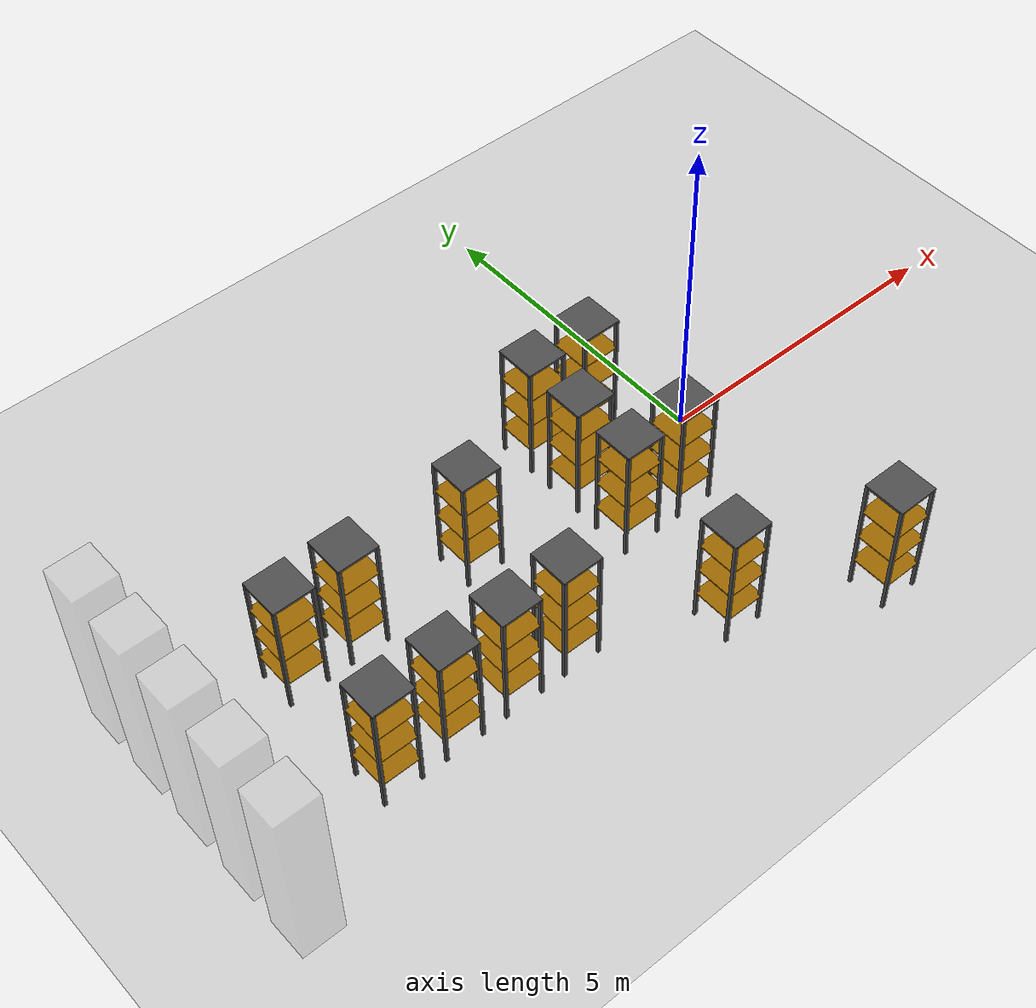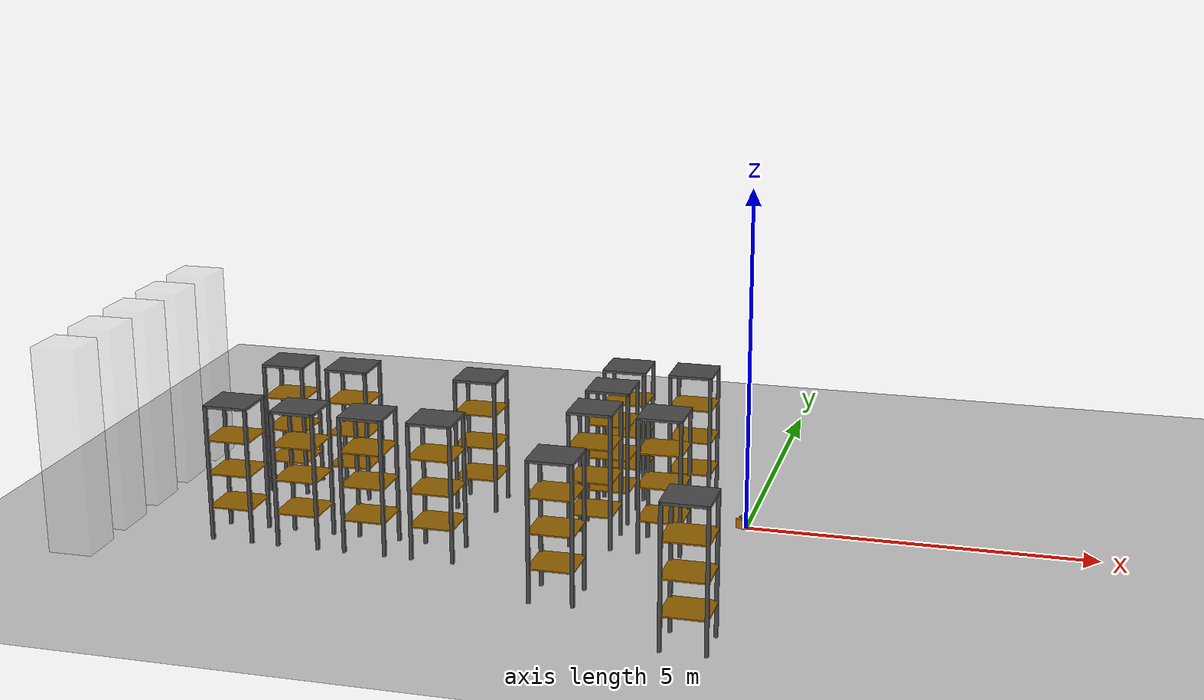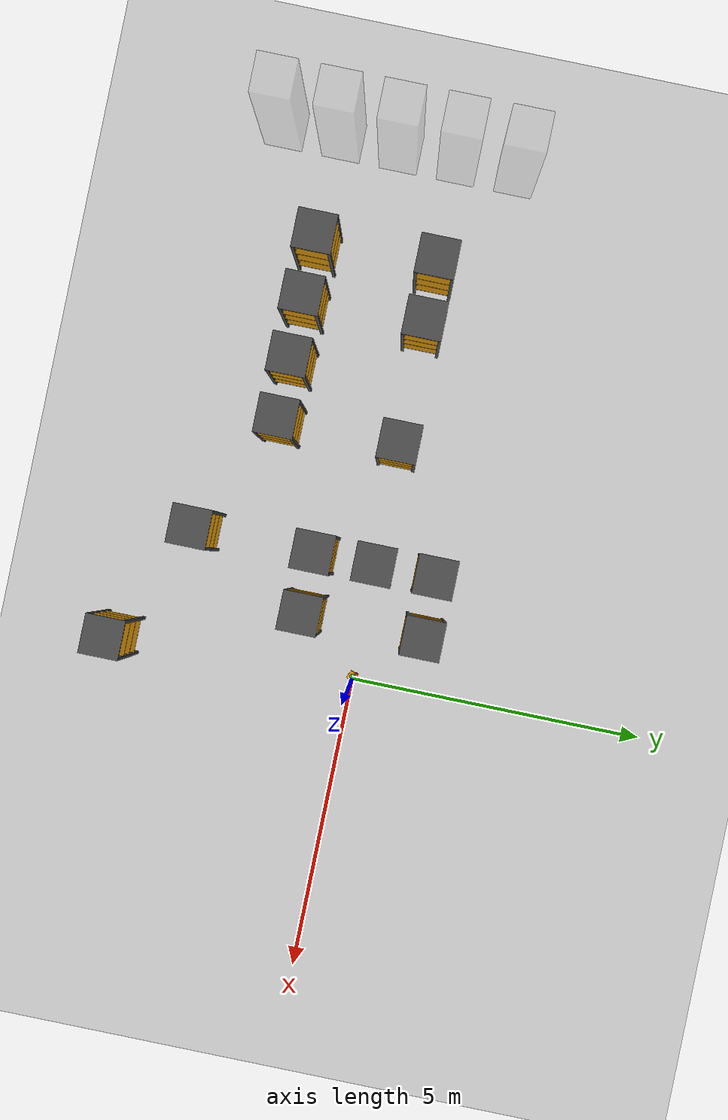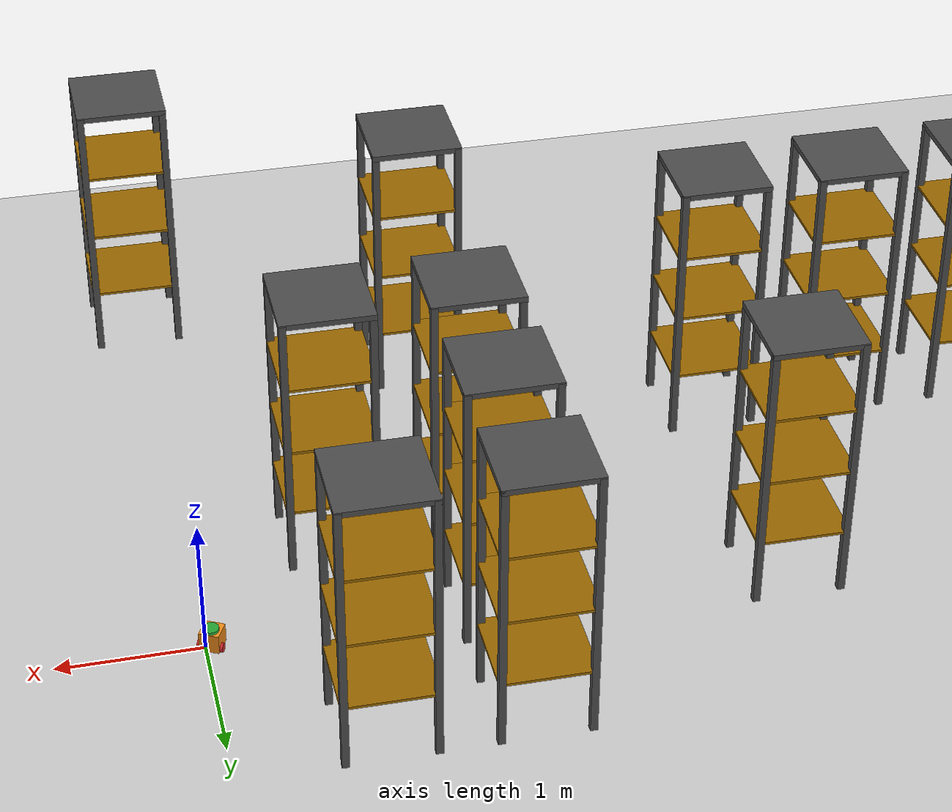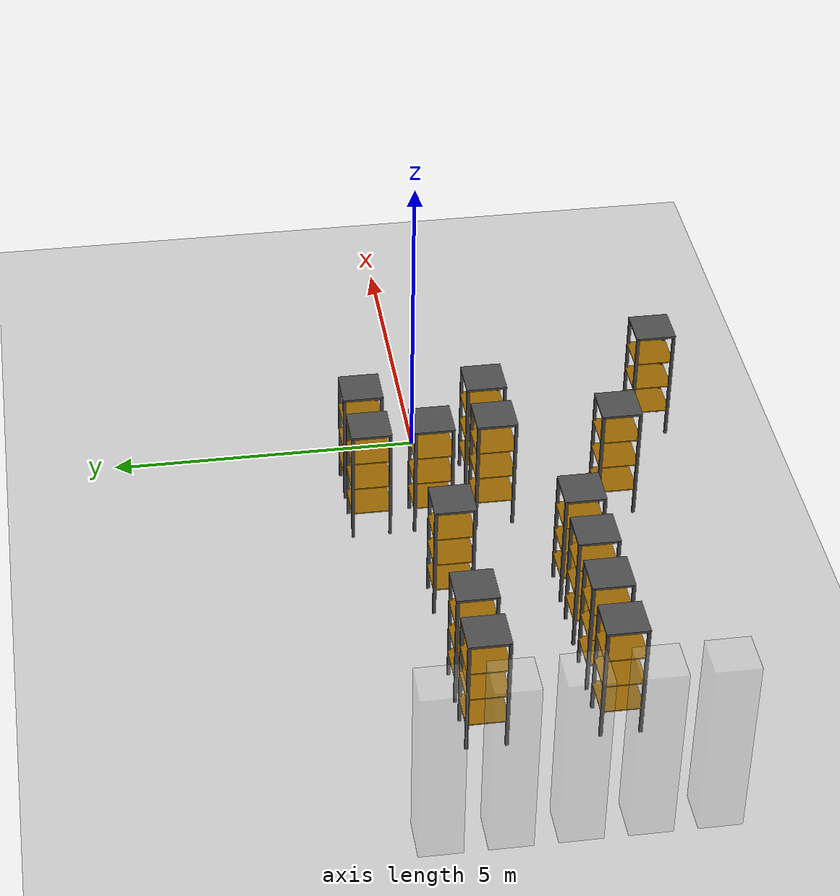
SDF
<sdf version="1.6">
 <world name="default">
  <model name="ground_plane">
   <static>1</static>
   <link name="link">
    <collision name="collision">
     <geometry><plane><normal>0 0 1</normal><size>50 50</size></plane></geometry>
     <surface><friction><ode><mu>100</mu><mu2>50</mu2></ode></friction></surface>
    </collision>
    <visual name="visual">
     <cast_shadows>0</cast_shadows>
     <geometry><plane><normal>0 0 1</normal><size>100 100</size></plane></geometry>
     <material>
      <script><uri>file://media/materials/scripts/gazebo.material</uri><name>Gazebo/Grey</name></script>
     </material>
    </visual>
    <velocity_decay><linear>0</linear><angular>0</angular></velocity_decay>
   </link>
  </model>
  <model name="warehouse_shelf_5_9">
   <static>1</static>
   <link name="main_block">
    <pose>0 0 1.25 0 -0 0</pose>
    <collision name="collision"><geometry><box><size>0.65 0.65 1.5</size></box></geometry></collision>
   </link>
   <link name="leg_1">
    <pose>0.3 0.3 1 0 -0 0</pose>
    <collision name="collision"><geometry><box><size>0.05 0.05 2</size></box></geometry></collision>
    <visual name="visual">
     <geometry><box><size>0.05 0.05 2</size></box></geometry>
     <material><ambient>0.2 0.2 0.2 1</ambient><diffuse>0.3 0.3 0.3 1</diffuse></material>
    </visual>
   </link>
   <link name="leg_2">
    <pose>-0.3 0.3 1 0 -0 0</pose>
    <collision name="collision"><geometry><box><size>0.05 0.05 2</size></box></geometry></collision>
    <visual name="visual">
     <geometry><box><size>0.05 0.05 2</size></box></geometry>
     <material><ambient>0.2 0.2 0.2 1</ambient><diffuse>0.3 0.3 0.3 1</diffuse></material>
    </visual>
   </link>
   <link name="leg_3">
    <pose>-0.3 -0.3 1 0 -0 0</pose>
    <collision name="collision"><geometry><box><size>0.05 0.05 2</size></box></geometry></collision>
    <visual name="visual">
     <geometry><box><size>0.05 0.05 2</size></box></geometry>
     <material><ambient>0.2 0.2 0.2 1</ambient><diffuse>0.3 0.3 0.3 1</diffuse></material>
    </visual>
   </link>
   <link name="leg_4">
    <pose>0.3 -0.3 1 0 -0 0</pose>
    <collision name="collision"><geometry><box><size>0.05 0.05 2</size></box></geometry></collision>
    <visual name="visual">
     <geometry><box><size>0.05 0.05 2</size></box></geometry>
     <material><ambient>0.2 0.2 0.2 1</ambient><diffuse>0.3 0.3 0.3 1</diffuse></material>
    </visual>
   </link>
   <link name="shelf_0">
    <pose>0 0 0.49 0 -0 0</pose>
    <visual name="visual">
     <geometry><box><size>0.649 0.649 0.02</size></box></geometry>
     <material><ambient>0.2 0.05 0 1</ambient><diffuse>0.6 0.4 0 1</diffuse></material>
    </visual>
   </link>
   <link name="shelf_1">
    <pose>0 0 0.99 0 -0 0</pose>
    <visual name="visual">
     <geometry><box><size>0.649 0.649 0.02</size></box></geometry>
     <material><ambient>0.2 0.05 0 1</ambient><diffuse>0.6 0.4 0 1</diffuse></material>
    </visual>
   </link>
   <link name="shelf_2">
    <pose>0 0 1.49 0 -0 0</pose>
    <visual name="visual">
     <geometry><box><size>0.649 0.649 0.02</size></box></geometry>
     <material><ambient>0.2 0.05 0 1</ambient><diffuse>0.6 0.4 0 1</diffuse></material>
    </visual>
   </link>
   <link name="shelf_top">
    <pose>0 0 1.99 0 -0 0</pose>
    <visual name="visual">
     <geometry><box><size>0.65 0.65 0.04</size></box></geometry>
     <material><ambient>0.2 0.2 0.2 1</ambient><diffuse>0.3 0.3 0.3 1</diffuse></material>
    </visual>
   </link>
   <pose>0 -4 0 0 -0 0</pose>
  </model>
  <model name="pole_6_0">
   <static>1</static>
   <link name="main_block">
    <pose>0 0 1.5 0 -0 0</pose>
    <collision name="collision"><geometry><box><size>0.65 0.65 3</size></box></geometry></collision>
    <visual name="visual">
     <geometry><box><size>0.65 0.65 3</size></box></geometry>
     <material><ambient>0.5 0.5 0.5 0.25</ambient><diffuse>0.75 0.75 0.75 0.25</diffuse></material>
    </visual>
   </link>
   <pose>-9 -3 0 0 -0 0</pose>
  </model>
  <model name="warehouse_shelf_6_7">
   <static>1</static>
   <link name="main_block">
    <pose>0 0 1.25 0 -0 0</pose>
    <collision name="collision"><geometry><box><size>0.65 0.65 1.5</size></box></geometry></collision>
   </link>
   <link name="leg_1">
    <pose>0.3 0.3 1 0 -0 0</pose>
    <collision name="collision"><geometry><box><size>0.05 0.05 2</size></box></geometry></collision>
    <visual name="visual">
     <geometry><box><size>0.05 0.05 2</size></box></geometry>
     <material><ambient>0.2 0.2 0.2 1</ambient><diffuse>0.3 0.3 0.3 1</diffuse></material>
    </visual>
   </link>
   <link name="leg_2">
    <pose>-0.3 0.3 1 0 -0 0</pose>
    <collision name="collision"><geometry><box><size>0.05 0.05 2</size></box></geometry></collision>
    <visual name="visual">
     <geometry><box><size>0.05 0.05 2</size></box></geometry>
     <material><ambient>0.2 0.2 0.2 1</ambient><diffuse>0.3 0.3 0.3 1</diffuse></material>
    </visual>
   </link>
   <link name="leg_3">
    <pose>-0.3 -0.3 1 0 -0 0</pose>
    <collision name="collision"><geometry><box><size>0.05 0.05 2</size></box></geometry></collision>
    <visual name="visual">
     <geometry><box><size>0.05 0.05 2</size></box></geometry>
     <material><ambient>0.2 0.2 0.2 1</ambient><diffuse>0.3 0.3 0.3 1</diffuse></material>
    </visual>
   </link>
   <link name="leg_4">
    <pose>0.3 -0.3 1 0 -0 0</pose>
    <collision name="collision"><geometry><box><size>0.05 0.05 2</size></box></geometry></collision>
    <visual name="visual">
     <geometry><box><size>0.05 0.05 2</size></box></geometry>
     <material><ambient>0.2 0.2 0.2 1</ambient><diffuse>0.3 0.3 0.3 1</diffuse></material>
    </visual>
   </link>
   <link name="shelf_0">
    <pose>0 0 0.49 0 -0 0</pose>
    <visual name="visual">
     <geometry><box><size>0.649 0.649 0.02</size></box></geometry>
     <material><ambient>0.2 0.05 0 1</ambient><diffuse>0.6 0.4 0 1</diffuse></material>
    </visual>
   </link>
   <link name="shelf_1">
    <pose>0 0 0.99 0 -0 0</pose>
    <visual name="visual">
     <geometry><box><size>0.649 0.649 0.02</size></box></geometry>
     <material><ambient>0.2 0.05 0 1</ambient><diffuse>0.6 0.4 0 1</diffuse></material>
    </visual>
   </link>
   <link name="shelf_2">
    <pose>0 0 1.49 0 -0 0</pose>
    <visual name="visual">
     <geometry><box><size>0.649 0.649 0.02</size></box></geometry>
     <material><ambient>0.2 0.05 0 1</ambient><diffuse>0.6 0.4 0 1</diffuse></material>
    </visual>
   </link>
   <link name="shelf_top">
    <pose>0 0 1.99 0 -0 0</pose>
    <visual name="visual">
     <geometry><box><size>0.65 0.65 0.04</size></box></geometry>
     <material><ambient>0.2 0.2 0.2 1</ambient><diffuse>0.3 0.3 0.3 1</diffuse></material>
    </visual>
   </link>
   <pose>-2 -3 0 0 -0 0</pose>
  </model>
  <model name="pole_7_0">
   <static>1</static>
   <link name="main_block">
    <pose>0 0 1.5 0 -0 0</pose>
    <collision name="collision"><geometry><box><size>0.65 0.65 3</size></box></geometry></collision>
    <visual name="visual">
     <geometry><box><size>0.65 0.65 3</size></box></geometry>
     <material><ambient>0.5 0.5 0.5 0.25</ambient><diffuse>0.75 0.75 0.75 0.25</diffuse></material>
    </visual>
   </link>
   <pose>-9 -2 0 0 -0 0</pose>
  </model>
  <model name="warehouse_shelf_7_2">
   <static>1</static>
   <link name="main_block">
    <pose>0 0 1.25 0 -0 0</pose>
    <collision name="collision"><geometry><box><size>0.65 0.65 1.5</size></box></geometry></collision>
   </link>
   <link name="leg_1">
    <pose>0.3 0.3 1 0 -0 0</pose>
    <collision name="collision"><geometry><box><size>0.05 0.05 2</size></box></geometry></collision>
    <visual name="visual">
     <geometry><box><size>0.05 0.05 2</size></box></geometry>
     <material><ambient>0.2 0.2 0.2 1</ambient><diffuse>0.3 0.3 0.3 1</diffuse></material>
    </visual>
   </link>
   <link name="leg_2">
    <pose>-0.3 0.3 1 0 -0 0</pose>
    <collision name="collision"><geometry><box><size>0.05 0.05 2</size></box></geometry></collision>
    <visual name="visual">
     <geometry><box><size>0.05 0.05 2</size></box></geometry>
     <material><ambient>0.2 0.2 0.2 1</ambient><diffuse>0.3 0.3 0.3 1</diffuse></material>
    </visual>
   </link>
   <link name="leg_3">
    <pose>-0.3 -0.3 1 0 -0 0</pose>
    <collision name="collision"><geometry><box><size>0.05 0.05 2</size></box></geometry></collision>
    <visual name="visual">
     <geometry><box><size>0.05 0.05 2</size></box></geometry>
     <material><ambient>0.2 0.2 0.2 1</ambient><diffuse>0.3 0.3 0.3 1</diffuse></material>
    </visual>
   </link>
   <link name="leg_4">
    <pose>0.3 -0.3 1 0 -0 0</pose>
    <collision name="collision"><geometry><box><size>0.05 0.05 2</size></box></geometry></collision>
    <visual name="visual">
     <geometry><box><size>0.05 0.05 2</size></box></geometry>
     <material><ambient>0.2 0.2 0.2 1</ambient><diffuse>0.3 0.3 0.3 1</diffuse></material>
    </visual>
   </link>
   <link name="shelf_0">
    <pose>0 0 0.49 0 -0 0</pose>
    <visual name="visual">
     <geometry><box><size>0.649 0.649 0.02</size></box></geometry>
     <material><ambient>0.2 0.05 0 1</ambient><diffuse>0.6 0.4 0 1</diffuse></material>
    </visual>
   </link>
   <link name="shelf_1">
    <pose>0 0 0.99 0 -0 0</pose>
    <visual name="visual">
     <geometry><box><size>0.649 0.649 0.02</size></box></geometry>
     <material><ambient>0.2 0.05 0 1</ambient><diffuse>0.6 0.4 0 1</diffuse></material>
    </visual>
   </link>
   <link name="shelf_2">
    <pose>0 0 1.49 0 -0 0</pose>
    <visual name="visual">
     <geometry><box><size>0.649 0.649 0.02</size></box></geometry>
     <material><ambient>0.2 0.05 0 1</ambient><diffuse>0.6 0.4 0 1</diffuse></material>
    </visual>
   </link>
   <link name="shelf_top">
    <pose>0 0 1.99 0 -0 0</pose>
    <visual name="visual">
     <geometry><box><size>0.65 0.65 0.04</size></box></geometry>
     <material><ambient>0.2 0.2 0.2 1</ambient><diffuse>0.3 0.3 0.3 1</diffuse></material>
    </visual>
   </link>
   <pose>-7 -2 0 0 -0 0</pose>
  </model>
  <model name="warehouse_shelf_7_3">
   <static>1</static>
   <link name="main_block">
    <pose>0 0 1.25 0 -0 0</pose>
    <collision name="collision"><geometry><box><size>0.65 0.65 1.5</size></box></geometry></collision>
   </link>
   <link name="leg_1">
    <pose>0.3 0.3 1 0 -0 0</pose>
    <collision name="collision"><geometry><box><size>0.05 0.05 2</size></box></geometry></collision>
    <visual name="visual">
     <geometry><box><size>0.05 0.05 2</size></box></geometry>
     <material><ambient>0.2 0.2 0.2 1</ambient><diffuse>0.3 0.3 0.3 1</diffuse></material>
    </visual>
   </link>
   <link name="leg_2">
    <pose>-0.3 0.3 1 0 -0 0</pose>
    <collision name="collision"><geometry><box><size>0.05 0.05 2</size></box></geometry></collision>
    <visual name="visual">
     <geometry><box><size>0.05 0.05 2</size></box></geometry>
     <material><ambient>0.2 0.2 0.2 1</ambient><diffuse>0.3 0.3 0.3 1</diffuse></material>
    </visual>
   </link>
   <link name="leg_3">
    <pose>-0.3 -0.3 1 0 -0 0</pose>
    <collision name="collision"><geometry><box><size>0.05 0.05 2</size></box></geometry></collision>
    <visual name="visual">
     <geometry><box><size>0.05 0.05 2</size></box></geometry>
     <material><ambient>0.2 0.2 0.2 1</ambient><diffuse>0.3 0.3 0.3 1</diffuse></material>
    </visual>
   </link>
   <link name="leg_4">
    <pose>0.3 -0.3 1 0 -0 0</pose>
    <collision name="collision"><geometry><box><size>0.05 0.05 2</size></box></geometry></collision>
    <visual name="visual">
     <geometry><box><size>0.05 0.05 2</size></box></geometry>
     <material><ambient>0.2 0.2 0.2 1</ambient><diffuse>0.3 0.3 0.3 1</diffuse></material>
    </visual>
   </link>
   <link name="shelf_0">
    <pose>0 0 0.49 0 -0 0</pose>
    <visual name="visual">
     <geometry><box><size>0.649 0.649 0.02</size></box></geometry>
     <material><ambient>0.2 0.05 0 1</ambient><diffuse>0.6 0.4 0 1</diffuse></material>
    </visual>
   </link>
   <link name="shelf_1">
    <pose>0 0 0.99 0 -0 0</pose>
    <visual name="visual">
     <geometry><box><size>0.649 0.649 0.02</size></box></geometry>
     <material><ambient>0.2 0.05 0 1</ambient><diffuse>0.6 0.4 0 1</diffuse></material>
    </visual>
   </link>
   <link name="shelf_2">
    <pose>0 0 1.49 0 -0 0</pose>
    <visual name="visual">
     <geometry><box><size>0.649 0.649 0.02</size></box></geometry>
     <material><ambient>0.2 0.05 0 1</ambient><diffuse>0.6 0.4 0 1</diffuse></material>
    </visual>
   </link>
   <link name="shelf_top">
    <pose>0 0 1.99 0 -0 0</pose>
    <visual name="visual">
     <geometry><box><size>0.65 0.65 0.04</size></box></geometry>
     <material><ambient>0.2 0.2 0.2 1</ambient><diffuse>0.3 0.3 0.3 1</diffuse></material>
    </visual>
   </link>
   <pose>-6 -2 0 0 -0 0</pose>
  </model>
  <model name="warehouse_shelf_7_4">
   <static>1</static>
   <link name="main_block">
    <pose>0 0 1.25 0 -0 0</pose>
    <collision name="collision"><geometry><box><size>0.65 0.65 1.5</size></box></geometry></collision>
   </link>
   <link name="leg_1">
    <pose>0.3 0.3 1 0 -0 0</pose>
    <collision name="collision"><geometry><box><size>0.05 0.05 2</size></box></geometry></collision>
    <visual name="visual">
     <geometry><box><size>0.05 0.05 2</size></box></geometry>
     <material><ambient>0.2 0.2 0.2 1</ambient><diffuse>0.3 0.3 0.3 1</diffuse></material>
    </visual>
   </link>
   <link name="leg_2">
    <pose>-0.3 0.3 1 0 -0 0</pose>
    <collision name="collision"><geometry><box><size>0.05 0.05 2</size></box></geometry></collision>
    <visual name="visual">
     <geometry><box><size>0.05 0.05 2</size></box></geometry>
     <material><ambient>0.2 0.2 0.2 1</ambient><diffuse>0.3 0.3 0.3 1</diffuse></material>
    </visual>
   </link>
   <link name="leg_3">
    <pose>-0.3 -0.3 1 0 -0 0</pose>
    <collision name="collision"><geometry><box><size>0.05 0.05 2</size></box></geometry></collision>
    <visual name="visual">
     <geometry><box><size>0.05 0.05 2</size></box></geometry>
     <material><ambient>0.2 0.2 0.2 1</ambient><diffuse>0.3 0.3 0.3 1</diffuse></material>
    </visual>
   </link>
   <link name="leg_4">
    <pose>0.3 -0.3 1 0 -0 0</pose>
    <collision name="collision"><geometry><box><size>0.05 0.05 2</size></box></geometry></collision>
    <visual name="visual">
     <geometry><box><size>0.05 0.05 2</size></box></geometry>
     <material><ambient>0.2 0.2 0.2 1</ambient><diffuse>0.3 0.3 0.3 1</diffuse></material>
    </visual>
   </link>
   <link name="shelf_0">
    <pose>0 0 0.49 0 -0 0</pose>
    <visual name="visual">
     <geometry><box><size>0.649 0.649 0.02</size></box></geometry>
     <material><ambient>0.2 0.05 0 1</ambient><diffuse>0.6 0.4 0 1</diffuse></material>
    </visual>
   </link>
   <link name="shelf_1">
    <pose>0 0 0.99 0 -0 0</pose>
    <visual name="visual">
     <geometry><box><size>0.649 0.649 0.02</size></box></geometry>
     <material><ambient>0.2 0.05 0 1</ambient><diffuse>0.6 0.4 0 1</diffuse></material>
    </visual>
   </link>
   <link name="shelf_2">
    <pose>0 0 1.49 0 -0 0</pose>
    <visual name="visual">
     <geometry><box><size>0.649 0.649 0.02</size></box></geometry>
     <material><ambient>0.2 0.05 0 1</ambient><diffuse>0.6 0.4 0 1</diffuse></material>
    </visual>
   </link>
   <link name="shelf_top">
    <pose>0 0 1.99 0 -0 0</pose>
    <visual name="visual">
     <geometry><box><size>0.65 0.65 0.04</size></box></geometry>
     <material><ambient>0.2 0.2 0.2 1</ambient><diffuse>0.3 0.3 0.3 1</diffuse></material>
    </visual>
   </link>
   <pose>-5 -2 0 0 -0 0</pose>
  </model>
  <model name="warehouse_shelf_7_5">
   <static>1</static>
   <link name="main_block">
    <pose>0 0 1.25 0 -0 0</pose>
    <collision name="collision"><geometry><box><size>0.65 0.65 1.5</size></box></geometry></collision>
   </link>
   <link name="leg_1">
    <pose>0.3 0.3 1 0 -0 0</pose>
    <collision name="collision"><geometry><box><size>0.05 0.05 2</size></box></geometry></collision>
    <visual name="visual">
     <geometry><box><size>0.05 0.05 2</size></box></geometry>
     <material><ambient>0.2 0.2 0.2 1</ambient><diffuse>0.3 0.3 0.3 1</diffuse></material>
    </visual>
   </link>
   <link name="leg_2">
    <pose>-0.3 0.3 1 0 -0 0</pose>
    <collision name="collision"><geometry><box><size>0.05 0.05 2</size></box></geometry></collision>
    <visual name="visual">
     <geometry><box><size>0.05 0.05 2</size></box></geometry>
     <material><ambient>0.2 0.2 0.2 1</ambient><diffuse>0.3 0.3 0.3 1</diffuse></material>
    </visual>
   </link>
   <link name="leg_3">
    <pose>-0.3 -0.3 1 0 -0 0</pose>
    <collision name="collision"><geometry><box><size>0.05 0.05 2</size></box></geometry></collision>
    <visual name="visual">
     <geometry><box><size>0.05 0.05 2</size></box></geometry>
     <material><ambient>0.2 0.2 0.2 1</ambient><diffuse>0.3 0.3 0.3 1</diffuse></material>
    </visual>
   </link>
   <link name="leg_4">
    <pose>0.3 -0.3 1 0 -0 0</pose>
    <collision name="collision"><geometry><box><size>0.05 0.05 2</size></box></geometry></collision>
    <visual name="visual">
     <geometry><box><size>0.05 0.05 2</size></box></geometry>
     <material><ambient>0.2 0.2 0.2 1</ambient><diffuse>0.3 0.3 0.3 1</diffuse></material>
    </visual>
   </link>
   <link name="shelf_0">
    <pose>0 0 0.49 0 -0 0</pose>
    <visual name="visual">
     <geometry><box><size>0.649 0.649 0.02</size></box></geometry>
     <material><ambient>0.2 0.05 0 1</ambient><diffuse>0.6 0.4 0 1</diffuse></material>
    </visual>
   </link>
   <link name="shelf_1">
    <pose>0 0 0.99 0 -0 0</pose>
    <visual name="visual">
     <geometry><box><size>0.649 0.649 0.02</size></box></geometry>
     <material><ambient>0.2 0.05 0 1</ambient><diffuse>0.6 0.4 0 1</diffuse></material>
    </visual>
   </link>
   <link name="shelf_2">
    <pose>0 0 1.49 0 -0 0</pose>
    <visual name="visual">
     <geometry><box><size>0.649 0.649 0.02</size></box></geometry>
     <material><ambient>0.2 0.05 0 1</ambient><diffuse>0.6 0.4 0 1</diffuse></material>
    </visual>
   </link>
   <link name="shelf_top">
    <pose>0 0 1.99 0 -0 0</pose>
    <visual name="visual">
     <geometry><box><size>0.65 0.65 0.04</size></box></geometry>
     <material><ambient>0.2 0.2 0.2 1</ambient><diffuse>0.3 0.3 0.3 1</diffuse></material>
    </visual>
   </link>
   <pose>-4 -2 0 0 -0 0</pose>
  </model>
  <model name="pole_8_0">
   <static>1</static>
   <link name="main_block">
    <pose>0 0 1.5 0 -0 0</pose>
    <collision name="collision"><geometry><box><size>0.65 0.65 3</size></box></geometry></collision>
    <visual name="visual">
     <geometry><box><size>0.65 0.65 3</size></box></geometry>
     <material><ambient>0.5 0.5 0.5 0.25</ambient><diffuse>0.75 0.75 0.75 0.25</diffuse></material>
    </visual>
   </link>
   <pose>-9 -1 0 0 -0 0</pose>
  </model>
  <model name="warehouse_shelf_8_7">
   <static>1</static>
   <link name="main_block">
    <pose>0 0 1.25 0 -0 0</pose>
    <collision name="collision"><geometry><box><size>0.65 0.65 1.5</size></box></geometry></collision>
   </link>
   <link name="leg_1">
    <pose>0.3 0.3 1 0 -0 0</pose>
    <collision name="collision"><geometry><box><size>0.05 0.05 2</size></box></geometry></collision>
    <visual name="visual">
     <geometry><box><size>0.05 0.05 2</size></box></geometry>
     <material><ambient>0.2 0.2 0.2 1</ambient><diffuse>0.3 0.3 0.3 1</diffuse></material>
    </visual>
   </link>
   <link name="leg_2">
    <pose>-0.3 0.3 1 0 -0 0</pose>
    <collision name="collision"><geometry><box><size>0.05 0.05 2</size></box></geometry></collision>
    <visual name="visual">
     <geometry><box><size>0.05 0.05 2</size></box></geometry>
     <material><ambient>0.2 0.2 0.2 1</ambient><diffuse>0.3 0.3 0.3 1</diffuse></material>
    </visual>
   </link>
   <link name="leg_3">
    <pose>-0.3 -0.3 1 0 -0 0</pose>
    <collision name="collision"><geometry><box><size>0.05 0.05 2</size></box></geometry></collision>
    <visual name="visual">
     <geometry><box><size>0.05 0.05 2</size></box></geometry>
     <material><ambient>0.2 0.2 0.2 1</ambient><diffuse>0.3 0.3 0.3 1</diffuse></material>
    </visual>
   </link>
   <link name="leg_4">
    <pose>0.3 -0.3 1 0 -0 0</pose>
    <collision name="collision"><geometry><box><size>0.05 0.05 2</size></box></geometry></collision>
    <visual name="visual">
     <geometry><box><size>0.05 0.05 2</size></box></geometry>
     <material><ambient>0.2 0.2 0.2 1</ambient><diffuse>0.3 0.3 0.3 1</diffuse></material>
    </visual>
   </link>
   <link name="shelf_0">
    <pose>0 0 0.49 0 -0 0</pose>
    <visual name="visual">
     <geometry><box><size>0.649 0.649 0.02</size></box></geometry>
     <material><ambient>0.2 0.05 0 1</ambient><diffuse>0.6 0.4 0 1</diffuse></material>
    </visual>
   </link>
   <link name="shelf_1">
    <pose>0 0 0.99 0 -0 0</pose>
    <visual name="visual">
     <geometry><box><size>0.649 0.649 0.02</size></box></geometry>
     <material><ambient>0.2 0.05 0 1</ambient><diffuse>0.6 0.4 0 1</diffuse></material>
    </visual>
   </link>
   <link name="shelf_2">
    <pose>0 0 1.49 0 -0 0</pose>
    <visual name="visual">
     <geometry><box><size>0.649 0.649 0.02</size></box></geometry>
     <material><ambient>0.2 0.05 0 1</ambient><diffuse>0.6 0.4 0 1</diffuse></material>
    </visual>
   </link>
   <link name="shelf_top">
    <pose>0 0 1.99 0 -0 0</pose>
    <visual name="visual">
     <geometry><box><size>0.65 0.65 0.04</size></box></geometry>
     <material><ambient>0.2 0.2 0.2 1</ambient><diffuse>0.3 0.3 0.3 1</diffuse></material>
    </visual>
   </link>
   <pose>-2 -1 0 0 -0 0</pose>
  </model>
  <model name="warehouse_shelf_8_8">
   <static>1</static>
   <link name="main_block">
    <pose>0 0 1.25 0 -0 0</pose>
    <collision name="collision"><geometry><box><size>0.65 0.65 1.5</size></box></geometry></collision>
   </link>
   <link name="leg_1">
    <pose>0.3 0.3 1 0 -0 0</pose>
    <collision name="collision"><geometry><box><size>0.05 0.05 2</size></box></geometry></collision>
    <visual name="visual">
     <geometry><box><size>0.05 0.05 2</size></box></geometry>
     <material><ambient>0.2 0.2 0.2 1</ambient><diffuse>0.3 0.3 0.3 1</diffuse></material>
    </visual>
   </link>
   <link name="leg_2">
    <pose>-0.3 0.3 1 0 -0 0</pose>
    <collision name="collision"><geometry><box><size>0.05 0.05 2</size></box></geometry></collision>
    <visual name="visual">
     <geometry><box><size>0.05 0.05 2</size></box></geometry>
     <material><ambient>0.2 0.2 0.2 1</ambient><diffuse>0.3 0.3 0.3 1</diffuse></material>
    </visual>
   </link>
   <link name="leg_3">
    <pose>-0.3 -0.3 1 0 -0 0</pose>
    <collision name="collision"><geometry><box><size>0.05 0.05 2</size></box></geometry></collision>
    <visual name="visual">
     <geometry><box><size>0.05 0.05 2</size></box></geometry>
     <material><ambient>0.2 0.2 0.2 1</ambient><diffuse>0.3 0.3 0.3 1</diffuse></material>
    </visual>
   </link>
   <link name="leg_4">
    <pose>0.3 -0.3 1 0 -0 0</pose>
    <collision name="collision"><geometry><box><size>0.05 0.05 2</size></box></geometry></collision>
    <visual name="visual">
     <geometry><box><size>0.05 0.05 2</size></box></geometry>
     <material><ambient>0.2 0.2 0.2 1</ambient><diffuse>0.3 0.3 0.3 1</diffuse></material>
    </visual>
   </link>
   <link name="shelf_0">
    <pose>0 0 0.49 0 -0 0</pose>
    <visual name="visual">
     <geometry><box><size>0.649 0.649 0.02</size></box></geometry>
     <material><ambient>0.2 0.05 0 1</ambient><diffuse>0.6 0.4 0 1</diffuse></material>
    </visual>
   </link>
   <link name="shelf_1">
    <pose>0 0 0.99 0 -0 0</pose>
    <visual name="visual">
     <geometry><box><size>0.649 0.649 0.02</size></box></geometry>
     <material><ambient>0.2 0.05 0 1</ambient><diffuse>0.6 0.4 0 1</diffuse></material>
    </visual>
   </link>
   <link name="shelf_2">
    <pose>0 0 1.49 0 -0 0</pose>
    <visual name="visual">
     <geometry><box><size>0.649 0.649 0.02</size></box></geometry>
     <material><ambient>0.2 0.05 0 1</ambient><diffuse>0.6 0.4 0 1</diffuse></material>
    </visual>
   </link>
   <link name="shelf_top">
    <pose>0 0 1.99 0 -0 0</pose>
    <visual name="visual">
     <geometry><box><size>0.65 0.65 0.04</size></box></geometry>
     <material><ambient>0.2 0.2 0.2 1</ambient><diffuse>0.3 0.3 0.3 1</diffuse></material>
    </visual>
   </link>
   <pose>-1 -1 0 0 -0 0</pose>
  </model>
  <model name="pole_9_0">
   <static>1</static>
   <link name="main_block">
    <pose>0 0 1.5 0 -0 0</pose>
    <collision name="collision"><geometry><box><size>0.65 0.65 3</size></box></geometry></collision>
    <visual name="visual">
     <geometry><box><size>0.65 0.65 3</size></box></geometry>
     <material><ambient>0.5 0.5 0.5 0.25</ambient><diffuse>0.75 0.75 0.75 0.25</diffuse></material>
    </visual>
   </link>
   <pose>-9 0 0 0 -0 0</pose>
  </model>
  <model name="warehouse_shelf_9_2">
   <static>1</static>
   <link name="main_block">
    <pose>0 0 1.25 0 -0 0</pose>
    <collision name="collision"><geometry><box><size>0.65 0.65 1.5</size></box></geometry></collision>
   </link>
   <link name="leg_1">
    <pose>0.3 0.3 1 0 -0 0</pose>
    <collision name="collision"><geometry><box><size>0.05 0.05 2</size></box></geometry></collision>
    <visual name="visual">
     <geometry><box><size>0.05 0.05 2</size></box></geometry>
     <material><ambient>0.2 0.2 0.2 1</ambient><diffuse>0.3 0.3 0.3 1</diffuse></material>
    </visual>
   </link>
   <link name="leg_2">
    <pose>-0.3 0.3 1 0 -0 0</pose>
    <collision name="collision"><geometry><box><size>0.05 0.05 2</size></box></geometry></collision>
    <visual name="visual">
     <geometry><box><size>0.05 0.05 2</size></box></geometry>
     <material><ambient>0.2 0.2 0.2 1</ambient><diffuse>0.3 0.3 0.3 1</diffuse></material>
    </visual>
   </link>
   <link name="leg_3">
    <pose>-0.3 -0.3 1 0 -0 0</pose>
    <collision name="collision"><geometry><box><size>0.05 0.05 2</size></box></geometry></collision>
    <visual name="visual">
     <geometry><box><size>0.05 0.05 2</size></box></geometry>
     <material><ambient>0.2 0.2 0.2 1</ambient><diffuse>0.3 0.3 0.3 1</diffuse></material>
    </visual>
   </link>
   <link name="leg_4">
    <pose>0.3 -0.3 1 0 -0 0</pose>
    <collision name="collision"><geometry><box><size>0.05 0.05 2</size></box></geometry></collision>
    <visual name="visual">
     <geometry><box><size>0.05 0.05 2</size></box></geometry>
     <material><ambient>0.2 0.2 0.2 1</ambient><diffuse>0.3 0.3 0.3 1</diffuse></material>
    </visual>
   </link>
   <link name="shelf_0">
    <pose>0 0 0.49 0 -0 0</pose>
    <visual name="visual">
     <geometry><box><size>0.649 0.649 0.02</size></box></geometry>
     <material><ambient>0.2 0.05 0 1</ambient><diffuse>0.6 0.4 0 1</diffuse></material>
    </visual>
   </link>
   <link name="shelf_1">
    <pose>0 0 0.99 0 -0 0</pose>
    <visual name="visual">
     <geometry><box><size>0.649 0.649 0.02</size></box></geometry>
     <material><ambient>0.2 0.05 0 1</ambient><diffuse>0.6 0.4 0 1</diffuse></material>
    </visual>
   </link>
   <link name="shelf_2">
    <pose>0 0 1.49 0 -0 0</pose>
    <visual name="visual">
     <geometry><box><size>0.649 0.649 0.02</size></box></geometry>
     <material><ambient>0.2 0.05 0 1</ambient><diffuse>0.6 0.4 0 1</diffuse></material>
    </visual>
   </link>
   <link name="shelf_top">
    <pose>0 0 1.99 0 -0 0</pose>
    <visual name="visual">
     <geometry><box><size>0.65 0.65 0.04</size></box></geometry>
     <material><ambient>0.2 0.2 0.2 1</ambient><diffuse>0.3 0.3 0.3 1</diffuse></material>
    </visual>
   </link>
   <pose>-7 0 0 0 -0 0</pose>
  </model>
  <model name="warehouse_shelf_9_3">
   <static>1</static>
   <link name="main_block">
    <pose>0 0 1.25 0 -0 0</pose>
    <collision name="collision"><geometry><box><size>0.65 0.65 1.5</size></box></geometry></collision>
   </link>
   <link name="leg_1">
    <pose>0.3 0.3 1 0 -0 0</pose>
    <collision name="collision"><geometry><box><size>0.05 0.05 2</size></box></geometry></collision>
    <visual name="visual">
     <geometry><box><size>0.05 0.05 2</size></box></geometry>
     <material><ambient>0.2 0.2 0.2 1</ambient><diffuse>0.3 0.3 0.3 1</diffuse></material>
    </visual>
   </link>
   <link name="leg_2">
    <pose>-0.3 0.3 1 0 -0 0</pose>
    <collision name="collision"><geometry><box><size>0.05 0.05 2</size></box></geometry></collision>
    <visual name="visual">
     <geometry><box><size>0.05 0.05 2</size></box></geometry>
     <material><ambient>0.2 0.2 0.2 1</ambient><diffuse>0.3 0.3 0.3 1</diffuse></material>
    </visual>
   </link>
   <link name="leg_3">
    <pose>-0.3 -0.3 1 0 -0 0</pose>
    <collision name="collision"><geometry><box><size>0.05 0.05 2</size></box></geometry></collision>
    <visual name="visual">
     <geometry><box><size>0.05 0.05 2</size></box></geometry>
     <material><ambient>0.2 0.2 0.2 1</ambient><diffuse>0.3 0.3 0.3 1</diffuse></material>
    </visual>
   </link>
   <link name="leg_4">
    <pose>0.3 -0.3 1 0 -0 0</pose>
    <collision name="collision"><geometry><box><size>0.05 0.05 2</size></box></geometry></collision>
    <visual name="visual">
     <geometry><box><size>0.05 0.05 2</size></box></geometry>
     <material><ambient>0.2 0.2 0.2 1</ambient><diffuse>0.3 0.3 0.3 1</diffuse></material>
    </visual>
   </link>
   <link name="shelf_0">
    <pose>0 0 0.49 0 -0 0</pose>
    <visual name="visual">
     <geometry><box><size>0.649 0.649 0.02</size></box></geometry>
     <material><ambient>0.2 0.05 0 1</ambient><diffuse>0.6 0.4 0 1</diffuse></material>
    </visual>
   </link>
   <link name="shelf_1">
    <pose>0 0 0.99 0 -0 0</pose>
    <visual name="visual">
     <geometry><box><size>0.649 0.649 0.02</size></box></geometry>
     <material><ambient>0.2 0.05 0 1</ambient><diffuse>0.6 0.4 0 1</diffuse></material>
    </visual>
   </link>
   <link name="shelf_2">
    <pose>0 0 1.49 0 -0 0</pose>
    <visual name="visual">
     <geometry><box><size>0.649 0.649 0.02</size></box></geometry>
     <material><ambient>0.2 0.05 0 1</ambient><diffuse>0.6 0.4 0 1</diffuse></material>
    </visual>
   </link>
   <link name="shelf_top">
    <pose>0 0 1.99 0 -0 0</pose>
    <visual name="visual">
     <geometry><box><size>0.65 0.65 0.04</size></box></geometry>
     <material><ambient>0.2 0.2 0.2 1</ambient><diffuse>0.3 0.3 0.3 1</diffuse></material>
    </visual>
   </link>
   <pose>-6 0 0 0 -0 0</pose>
  </model>
  <model name="warehouse_shelf_9_5">
   <static>1</static>
   <link name="main_block">
    <pose>0 0 1.25 0 -0 0</pose>
    <collision name="collision"><geometry><box><size>0.65 0.65 1.5</size></box></geometry></collision>
   </link>
   <link name="leg_1">
    <pose>0.3 0.3 1 0 -0 0</pose>
    <collision name="collision"><geometry><box><size>0.05 0.05 2</size></box></geometry></collision>
    <visual name="visual">
     <geometry><box><size>0.05 0.05 2</size></box></geometry>
     <material><ambient>0.2 0.2 0.2 1</ambient><diffuse>0.3 0.3 0.3 1</diffuse></material>
    </visual>
   </link>
   <link name="leg_2">
    <pose>-0.3 0.3 1 0 -0 0</pose>
    <collision name="collision"><geometry><box><size>0.05 0.05 2</size></box></geometry></collision>
    <visual name="visual">
     <geometry><box><size>0.05 0.05 2</size></box></geometry>
     <material><ambient>0.2 0.2 0.2 1</ambient><diffuse>0.3 0.3 0.3 1</diffuse></material>
    </visual>
   </link>
   <link name="leg_3">
    <pose>-0.3 -0.3 1 0 -0 0</pose>
    <collision name="collision"><geometry><box><size>0.05 0.05 2</size></box></geometry></collision>
    <visual name="visual">
     <geometry><box><size>0.05 0.05 2</size></box></geometry>
     <material><ambient>0.2 0.2 0.2 1</ambient><diffuse>0.3 0.3 0.3 1</diffuse></material>
    </visual>
   </link>
   <link name="leg_4">
    <pose>0.3 -0.3 1 0 -0 0</pose>
    <collision name="collision"><geometry><box><size>0.05 0.05 2</size></box></geometry></collision>
    <visual name="visual">
     <geometry><box><size>0.05 0.05 2</size></box></geometry>
     <material><ambient>0.2 0.2 0.2 1</ambient><diffuse>0.3 0.3 0.3 1</diffuse></material>
    </visual>
   </link>
   <link name="shelf_0">
    <pose>0 0 0.49 0 -0 0</pose>
    <visual name="visual">
     <geometry><box><size>0.649 0.649 0.02</size></box></geometry>
     <material><ambient>0.2 0.05 0 1</ambient><diffuse>0.6 0.4 0 1</diffuse></material>
    </visual>
   </link>
   <link name="shelf_1">
    <pose>0 0 0.99 0 -0 0</pose>
    <visual name="visual">
     <geometry><box><size>0.649 0.649 0.02</size></box></geometry>
     <material><ambient>0.2 0.05 0 1</ambient><diffuse>0.6 0.4 0 1</diffuse></material>
    </visual>
   </link>
   <link name="shelf_2">
    <pose>0 0 1.49 0 -0 0</pose>
    <visual name="visual">
     <geometry><box><size>0.649 0.649 0.02</size></box></geometry>
     <material><ambient>0.2 0.05 0 1</ambient><diffuse>0.6 0.4 0 1</diffuse></material>
    </visual>
   </link>
   <link name="shelf_top">
    <pose>0 0 1.99 0 -0 0</pose>
    <visual name="visual">
     <geometry><box><size>0.65 0.65 0.04</size></box></geometry>
     <material><ambient>0.2 0.2 0.2 1</ambient><diffuse>0.3 0.3 0.3 1</diffuse></material>
    </visual>
   </link>
   <pose>-4 0 0 0 -0 0</pose>
  </model>
  <model name="warehouse_shelf_9_7">
   <static>1</static>
   <link name="main_block">
    <pose>0 0 1.25 0 -0 0</pose>
    <collision name="collision"><geometry><box><size>0.65 0.65 1.5</size></box></geometry></collision>
   </link>
   <link name="leg_1">
    <pose>0.3 0.3 1 0 -0 0</pose>
    <collision name="collision"><geometry><box><size>0.05 0.05 2</size></box></geometry></collision>
    <visual name="visual">
     <geometry><box><size>0.05 0.05 2</size></box></geometry>
     <material><ambient>0.2 0.2 0.2 1</ambient><diffuse>0.3 0.3 0.3 1</diffuse></material>
    </visual>
   </link>
   <link name="leg_2">
    <pose>-0.3 0.3 1 0 -0 0</pose>
    <collision name="collision"><geometry><box><size>0.05 0.05 2</size></box></geometry></collision>
    <visual name="visual">
     <geometry><box><size>0.05 0.05 2</size></box></geometry>
     <material><ambient>0.2 0.2 0.2 1</ambient><diffuse>0.3 0.3 0.3 1</diffuse></material>
    </visual>
   </link>
   <link name="leg_3">
    <pose>-0.3 -0.3 1 0 -0 0</pose>
    <collision name="collision"><geometry><box><size>0.05 0.05 2</size></box></geometry></collision>
    <visual name="visual">
     <geometry><box><size>0.05 0.05 2</size></box></geometry>
     <material><ambient>0.2 0.2 0.2 1</ambient><diffuse>0.3 0.3 0.3 1</diffuse></material>
    </visual>
   </link>
   <link name="leg_4">
    <pose>0.3 -0.3 1 0 -0 0</pose>
    <collision name="collision"><geometry><box><size>0.05 0.05 2</size></box></geometry></collision>
    <visual name="visual">
     <geometry><box><size>0.05 0.05 2</size></box></geometry>
     <material><ambient>0.2 0.2 0.2 1</ambient><diffuse>0.3 0.3 0.3 1</diffuse></material>
    </visual>
   </link>
   <link name="shelf_0">
    <pose>0 0 0.49 0 -0 0</pose>
    <visual name="visual">
     <geometry><box><size>0.649 0.649 0.02</size></box></geometry>
     <material><ambient>0.2 0.05 0 1</ambient><diffuse>0.6 0.4 0 1</diffuse></material>
    </visual>
   </link>
   <link name="shelf_1">
    <pose>0 0 0.99 0 -0 0</pose>
    <visual name="visual">
     <geometry><box><size>0.649 0.649 0.02</size></box></geometry>
     <material><ambient>0.2 0.05 0 1</ambient><diffuse>0.6 0.4 0 1</diffuse></material>
    </visual>
   </link>
   <link name="shelf_2">
    <pose>0 0 1.49 0 -0 0</pose>
    <visual name="visual">
     <geometry><box><size>0.649 0.649 0.02</size></box></geometry>
     <material><ambient>0.2 0.05 0 1</ambient><diffuse>0.6 0.4 0 1</diffuse></material>
    </visual>
   </link>
   <link name="shelf_top">
    <pose>0 0 1.99 0 -0 0</pose>
    <visual name="visual">
     <geometry><box><size>0.65 0.65 0.04</size></box></geometry>
     <material><ambient>0.2 0.2 0.2 1</ambient><diffuse>0.3 0.3 0.3 1</diffuse></material>
    </visual>
   </link>
   <pose>-2 0 0 0 -0 0</pose>
  </model>
  <model name="pole_10_0">
   <static>1</static>
   <link name="main_block">
    <pose>0 0 1.5 0 -0 0</pose>
    <collision name="collision"><geometry><box><size>0.65 0.65 3</size></box></geometry></collision>
    <visual name="visual">
     <geometry><box><size>0.65 0.65 3</size></box></geometry>
     <material><ambient>0.5 0.5 0.5 0.25</ambient><diffuse>0.75 0.75 0.75 0.25</diffuse></material>
    </visual>
   </link>
   <pose>-9 1 0 0 -0 0</pose>
  </model>
  <model name="warehouse_shelf_10_7">
   <static>1</static>
   <link name="main_block">
    <pose>0 0 1.25 0 -0 0</pose>
    <collision name="collision"><geometry><box><size>0.65 0.65 1.5</size></box></geometry></collision>
   </link>
   <link name="leg_1">
    <pose>0.3 0.3 1 0 -0 0</pose>
    <collision name="collision"><geometry><box><size>0.05 0.05 2</size></box></geometry></collision>
    <visual name="visual">
     <geometry><box><size>0.05 0.05 2</size></box></geometry>
     <material><ambient>0.2 0.2 0.2 1</ambient><diffuse>0.3 0.3 0.3 1</diffuse></material>
    </visual>
   </link>
   <link name="leg_2">
    <pose>-0.3 0.3 1 0 -0 0</pose>
    <collision name="collision"><geometry><box><size>0.05 0.05 2</size></box></geometry></collision>
    <visual name="visual">
     <geometry><box><size>0.05 0.05 2</size></box></geometry>
     <material><ambient>0.2 0.2 0.2 1</ambient><diffuse>0.3 0.3 0.3 1</diffuse></material>
    </visual>
   </link>
   <link name="leg_3">
    <pose>-0.3 -0.3 1 0 -0 0</pose>
    <collision name="collision"><geometry><box><size>0.05 0.05 2</size></box></geometry></collision>
    <visual name="visual">
     <geometry><box><size>0.05 0.05 2</size></box></geometry>
     <material><ambient>0.2 0.2 0.2 1</ambient><diffuse>0.3 0.3 0.3 1</diffuse></material>
    </visual>
   </link>
   <link name="leg_4">
    <pose>0.3 -0.3 1 0 -0 0</pose>
    <collision name="collision"><geometry><box><size>0.05 0.05 2</size></box></geometry></collision>
    <visual name="visual">
     <geometry><box><size>0.05 0.05 2</size></box></geometry>
     <material><ambient>0.2 0.2 0.2 1</ambient><diffuse>0.3 0.3 0.3 1</diffuse></material>
    </visual>
   </link>
   <link name="shelf_0">
    <pose>0 0 0.49 0 -0 0</pose>
    <visual name="visual">
     <geometry><box><size>0.649 0.649 0.02</size></box></geometry>
     <material><ambient>0.2 0.05 0 1</ambient><diffuse>0.6 0.4 0 1</diffuse></material>
    </visual>
   </link>
   <link name="shelf_1">
    <pose>0 0 0.99 0 -0 0</pose>
    <visual name="visual">
     <geometry><box><size>0.649 0.649 0.02</size></box></geometry>
     <material><ambient>0.2 0.05 0 1</ambient><diffuse>0.6 0.4 0 1</diffuse></material>
    </visual>
   </link>
   <link name="shelf_2">
    <pose>0 0 1.49 0 -0 0</pose>
    <visual name="visual">
     <geometry><box><size>0.649 0.649 0.02</size></box></geometry>
     <material><ambient>0.2 0.05 0 1</ambient><diffuse>0.6 0.4 0 1</diffuse></material>
    </visual>
   </link>
   <link name="shelf_top">
    <pose>0 0 1.99 0 -0 0</pose>
    <visual name="visual">
     <geometry><box><size>0.65 0.65 0.04</size></box></geometry>
     <material><ambient>0.2 0.2 0.2 1</ambient><diffuse>0.3 0.3 0.3 1</diffuse></material>
    </visual>
   </link>
   <pose>-2 1 0 0 -0 0</pose>
  </model>
  <model name="warehouse_shelf_10_8">
   <static>1</static>
   <link name="main_block">
    <pose>0 0 1.25 0 -0 0</pose>
    <collision name="collision"><geometry><box><size>0.65 0.65 1.5</size></box></geometry></collision>
   </link>
   <link name="leg_1">
    <pose>0.3 0.3 1 0 -0 0</pose>
    <collision name="collision"><geometry><box><size>0.05 0.05 2</size></box></geometry></collision>
    <visual name="visual">
     <geometry><box><size>0.05 0.05 2</size></box></geometry>
     <material><ambient>0.2 0.2 0.2 1</ambient><diffuse>0.3 0.3 0.3 1</diffuse></material>
    </visual>
   </link>
   <link name="leg_2">
    <pose>-0.3 0.3 1 0 -0 0</pose>
    <collision name="collision"><geometry><box><size>0.05 0.05 2</size></box></geometry></collision>
    <visual name="visual">
     <geometry><box><size>0.05 0.05 2</size></box></geometry>
     <material><ambient>0.2 0.2 0.2 1</ambient><diffuse>0.3 0.3 0.3 1</diffuse></material>
    </visual>
   </link>
   <link name="leg_3">
    <pose>-0.3 -0.3 1 0 -0 0</pose>
    <collision name="collision"><geometry><box><size>0.05 0.05 2</size></box></geometry></collision>
    <visual name="visual">
     <geometry><box><size>0.05 0.05 2</size></box></geometry>
     <material><ambient>0.2 0.2 0.2 1</ambient><diffuse>0.3 0.3 0.3 1</diffuse></material>
    </visual>
   </link>
   <link name="leg_4">
    <pose>0.3 -0.3 1 0 -0 0</pose>
    <collision name="collision"><geometry><box><size>0.05 0.05 2</size></box></geometry></collision>
    <visual name="visual">
     <geometry><box><size>0.05 0.05 2</size></box></geometry>
     <material><ambient>0.2 0.2 0.2 1</ambient><diffuse>0.3 0.3 0.3 1</diffuse></material>
    </visual>
   </link>
   <link name="shelf_0">
    <pose>0 0 0.49 0 -0 0</pose>
    <visual name="visual">
     <geometry><box><size>0.649 0.649 0.02</size></box></geometry>
     <material><ambient>0.2 0.05 0 1</ambient><diffuse>0.6 0.4 0 1</diffuse></material>
    </visual>
   </link>
   <link name="shelf_1">
    <pose>0 0 0.99 0 -0 0</pose>
    <visual name="visual">
     <geometry><box><size>0.649 0.649 0.02</size></box></geometry>
     <material><ambient>0.2 0.05 0 1</ambient><diffuse>0.6 0.4 0 1</diffuse></material>
    </visual>
   </link>
   <link name="shelf_2">
    <pose>0 0 1.49 0 -0 0</pose>
    <visual name="visual">
     <geometry><box><size>0.649 0.649 0.02</size></box></geometry>
     <material><ambient>0.2 0.05 0 1</ambient><diffuse>0.6 0.4 0 1</diffuse></material>
    </visual>
   </link>
   <link name="shelf_top">
    <pose>0 0 1.99 0 -0 0</pose>
    <visual name="visual">
     <geometry><box><size>0.65 0.65 0.04</size></box></geometry>
     <material><ambient>0.2 0.2 0.2 1</ambient><diffuse>0.3 0.3 0.3 1</diffuse></material>
    </visual>
   </link>
   <pose>-1 1 0 0 -0 0</pose>
  </model>
  <model name="alphie">
   <link name="base_footprint">
    <inertial>
     <pose>-0.00429 0 0.028683 0 -0 0</pose>
     <mass>0.944735</mass>
     <inertia>
      <ixx>0.00662163</ixx>
      <ixy>-1.22941e-05</ixy>
      <ixz>0.000523039</ixz>
      <iyy>0.00666071</iyy>
      <iyz>-5.01209e-06</iyz>
      <izz>0.00413858</izz>
     </inertia>
    </inertial>
    <collision name="base_footprint_fixed_joint_lump__base_link_collision">
     <pose>-0.032 0 0.08 0 -0 0</pose>
     <geometry><box><size>0.14 0.14 0.143</size></box></geometry>
    </collision>
    <collision name="base_footprint_fixed_joint_lump__caster_back_link_collision_1">
     <pose>-0.081 1e-06 0.005 -1.57 0 0</pose>
     <geometry><box><size>0.03 0.009 0.02</size></box></geometry>
     <surface>
      <contact><ode><kp>1e+06</kp><kd>100</kd><max_vel>1</max_vel><min_depth>0.001</min_depth></ode></contact>
      <friction><ode><mu>0.1</mu><mu2>0.1</mu2></ode></friction>
     </surface>
    </collision>
    <collision name="base_footprint_fixed_joint_lump__base_scan_collision_2">
     <pose>-0.017 0 0.1585 0 -0 0</pose>
     <geometry><cylinder><length>0.0315</length><radius>0.055</radius></cylinder></geometry>
    </collision>
    <visual name="base_footprint_fixed_joint_lump__base_link_visual">
     <pose>-0.032 0 0.08 0 -0 0</pose>
     <geometry><box><size>0.14 0.14 0.143</size></box></geometry>
     <material>
      <script><name>Gazebo/Orange</name><uri>file://media/materials/scripts/gazebo.material</uri></script>
     </material>
    </visual>
    <visual name="base_footprint_fixed_joint_lump__base_scan_visual_1">
     <pose>-0.017 0 0.1585 0 -0 0</pose>
     <geometry><cylinder><length>0.0315</length><radius>0.055</radius></cylinder></geometry>
     <material>
      <script><name>Gazebo/Green</name><uri>file://media/materials/scripts/gazebo.material</uri></script>
     </material>
    </visual>
    <sensor name="imu" type="imu">
     <always_on>1</always_on>
     <visualize>0</visualize>
     <pose>-0.032 0 0.078 0 -0 0</pose>
    </sensor>
    <sensor name="lds_lfcd_sensor" type="ray">
     <visualize>0</visualize>
     <update_rate>5</update_rate>
     <ray>
      <scan>
       <horizontal>
        <samples>360</samples>
        <resolution>1</resolution>
        <min_angle>0</min_angle>
        <max_angle>6.28319</max_angle>
       </horizontal>
       <vertical><samples>1</samples><min_angle>0</min_angle><max_angle>0</max_angle></vertical>
      </scan>
      <range><min>0.12</min><max>3.5</max><resolution>0.015</resolution></range>
      <noise><type>gaussian</type><mean>0</mean><stddev>0.01</stddev></noise>
     </ray>
     <plugin name="gazebo_ros_lds_lfcd_controller" filename="libgazebo_ros_laser.so">
      <topicName>scan</topicName>
      <frameName>base_scan</frameName>
      <robotNamespace>/alphie/</robotNamespace>
     </plugin>
     <pose>-0.032 0 0.165 0 -0 0</pose>
    </sensor>
   </link>
   <link name="wheel_left_link">
    <pose>0 0.08 0.033 -1.57 0 0</pose>
    <inertial>
     <mass>0.0284989</mass>
     <inertia>
      <ixx>1.11756e-05</ixx>
      <ixy>-4.23698e-11</ixy>
      <ixz>-5.93817e-09</ixz>
      <iyy>1.11924e-05</iyy>
      <iyz>-1.44001e-11</iyz>
      <izz>2.07126e-05</izz>
     </inertia>
    </inertial>
    <collision name="wheel_left_link_collision">
     <geometry><cylinder><length>0.018</length><radius>0.033</radius></cylinder></geometry>
     <surface>
      <contact><ode><kp>500000</kp><kd>10</kd><max_vel>0.1</max_vel><min_depth>0.001</min_depth></ode></contact>
      <friction><ode><mu>0.1</mu><mu2>0.1</mu2><fdir1>1 0 0</fdir1></ode></friction>
     </surface>
    </collision>
    <visual name="wheel_left_link_visual">
     <geometry><cylinder><length>0.018</length><radius>0.033</radius></cylinder></geometry>
     <material>
      <script><name>Gazebo/Red</name><uri>file://media/materials/scripts/gazebo.material</uri></script>
     </material>
    </visual>
   </link>
   <joint name="wheel_left_joint" type="revolute">
    <child>wheel_left_link</child>
    <parent>base_footprint</parent>
    <axis>
     <xyz>0 0 1</xyz>
     <limit><lower>-1e+16</lower><upper>1e+16</upper></limit>
     <dynamics><spring_reference>0</spring_reference><spring_stiffness>0</spring_stiffness></dynamics>
     <use_parent_model_frame>0</use_parent_model_frame>
    </axis>
   </joint>
   <link name="wheel_right_link">
    <pose>0 -0.08 0.033 -1.57 0 0</pose>
    <inertial>
     <mass>0.0284989</mass>
     <inertia>
      <ixx>1.11756e-05</ixx>
      <ixy>-4.23698e-11</ixy>
      <ixz>-5.93817e-09</ixz>
      <iyy>1.11924e-05</iyy>
      <iyz>-1.44001e-11</iyz>
      <izz>2.07126e-05</izz>
     </inertia>
    </inertial>
    <collision name="wheel_right_link_collision">
     <geometry><cylinder><length>0.018</length><radius>0.033</radius></cylinder></geometry>
     <surface>
      <contact><ode><kp>500000</kp><kd>10</kd><max_vel>0.1</max_vel><min_depth>0.001</min_depth></ode></contact>
      <friction><ode><mu>0.1</mu><mu2>0.1</mu2><fdir1>1 0 0</fdir1></ode></friction>
     </surface>
    </collision>
    <visual name="wheel_right_link_visual">
     <geometry><cylinder><length>0.018</length><radius>0.033</radius></cylinder></geometry>
     <material>
      <script><name>Gazebo/Red</name><uri>file://media/materials/scripts/gazebo.material</uri></script>
     </material>
    </visual>
   </link>
   <joint name="wheel_right_joint" type="revolute">
    <child>wheel_right_link</child>
    <parent>base_footprint</parent>
    <axis>
     <xyz>0 0 1</xyz>
     <limit><lower>-1e+16</lower><upper>1e+16</upper></limit>
     <dynamics><spring_reference>0</spring_reference><spring_stiffness>0</spring_stiffness></dynamics>
     <use_parent_model_frame>0</use_parent_model_frame>
    </axis>
   </joint>
   <plugin name="turtlebot3_burger_controller" filename="libgazebo_ros_diff_drive.so">
    <commandTopic>cmd_vel</commandTopic>
    <odometryTopic>odom</odometryTopic>
    <odometryFrame>odom</odometryFrame>
    <odometrySource>world</odometrySource>
    <publishOdomTF>1</publishOdomTF>
    <robotBaseFrame>base_footprint</robotBaseFrame>
    <publishWheelTF>0</publishWheelTF>
    <publishTf>1</publishTf>
    <publishWheelJointState>1</publishWheelJointState>
    <legacyMode>0</legacyMode>
    <updateRate>30</updateRate>
    <leftJoint>wheel_left_joint</leftJoint>
    <rightJoint>wheel_right_joint</rightJoint>
    <wheelSeparation>0.160</wheelSeparation>
    <wheelDiameter>0.066</wheelDiameter>
    <wheelAcceleration>1</wheelAcceleration>
    <wheelTorque>10</wheelTorque>
    <rosDebugLevel>na</rosDebugLevel>
    <robotNamespace>/alphie/</robotNamespace>
   </plugin>
   <static>0</static>
   <plugin name="imu_plugin" filename="libgazebo_ros_imu.so">
    <alwaysOn>1</alwaysOn>
    <topicName>imu</topicName>
    <serviceName>imu_service</serviceName>
    <gaussianNoise>0.0</gaussianNoise>
    <updateRate>0</updateRate>
    <imu>
     <noise>
      <type>gaussian</type>
      <rate>
       <mean>0.0</mean>
       <stddev>2e-4</stddev>
       <bias_mean>0.0000075</bias_mean>
       <bias_stddev>0.0000008</bias_stddev>
      </rate>
      <accel>
       <mean>0.0</mean>
       <stddev>1.7e-2</stddev>
       <bias_mean>0.1</bias_mean>
       <bias_stddev>0.001</bias_stddev>
      </accel>
     </noise>
    </imu>
    <robotNamespace>/alphie/</robotNamespace>
    <bodyName>base_footprint</bodyName>
    <frameName>base_footprint</frameName>
    <xyzOffset>0.064 0 -0.156</xyzOffset>
    <rpyOffset>0 -0 0</rpyOffset>
   </plugin>
   <pose>-0.03491 0.022058 -0.001003 -1.5e-05 0.007728 1.09989</pose>
  </model>
 </world>
</sdf>
